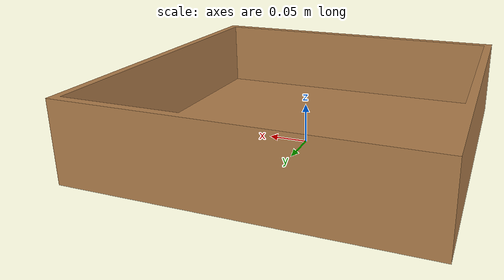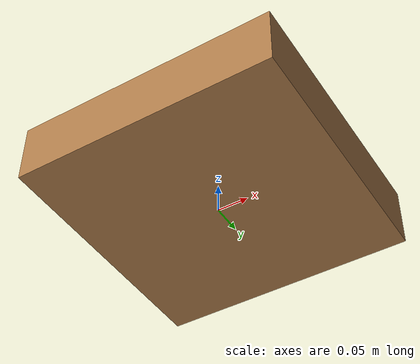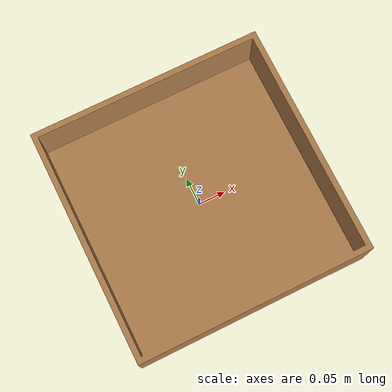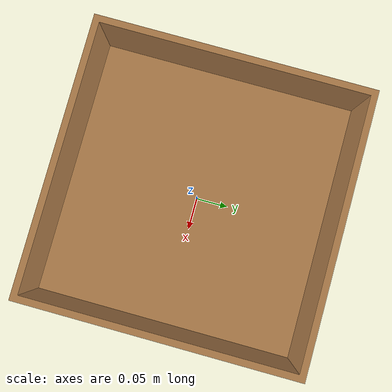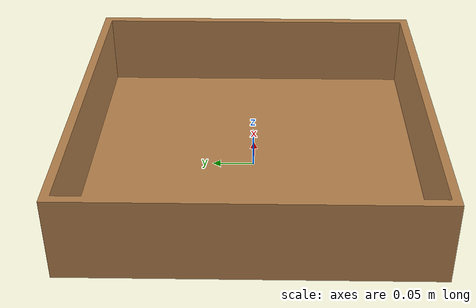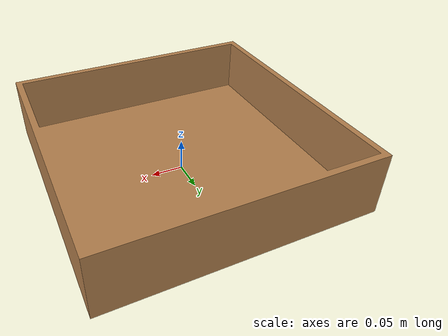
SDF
<?xml version="1.0" ?>
<sdf version="1.6">
  <model name="bin">
    <static>true</static>
    <link name="link">
      <pose>0 0 0 0 0 0</pose>
      <inertial>
        <mass>2</mass>
        <inertia>
          <ixx>2.3541666666666672e-03</ixx>
          <ixy>0</ixy>
          <ixz>0</ixz>
          <iyy>2.3541666666666672e-03</iyy>
          <iyz>0</iyz>
          <izz>2.3541666666666672e-03</izz>
        </inertia>
      </inertial>
      <collision name="collision">
        <pose>0 0 0 0 0 0</pose>
        <geometry>
          <mesh>
            <uri>model://bin/meshes/model.stl</uri>
          </mesh>
        </geometry>
      </collision>
      <visual name="visual">
        <pose>0 0 0 0 0 0</pose>
        <geometry>
          <mesh>
            <uri>model://bin/meshes/model.dae</uri>
          </mesh>
        </geometry>
        <material>
          <script>
            <uri>file://media/materials/scripts/gazebo.material</uri>
            <name>Gazebo/Wood</name>
          </script>
        </material>
      </visual>
    </link>
  </model>
</sdf>
